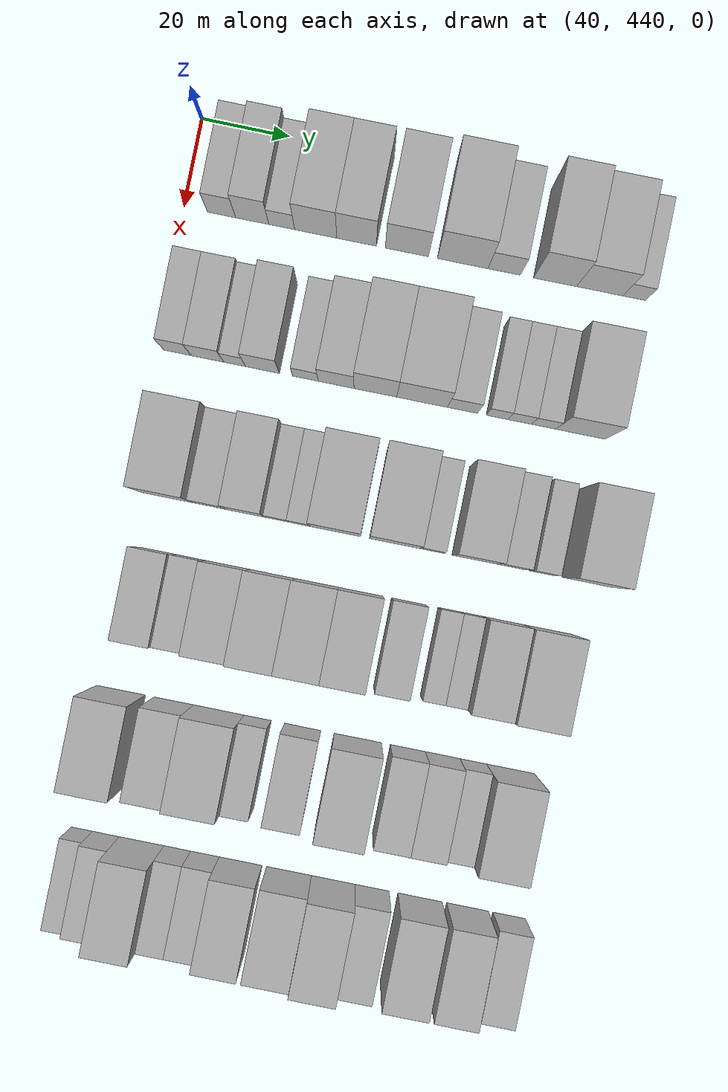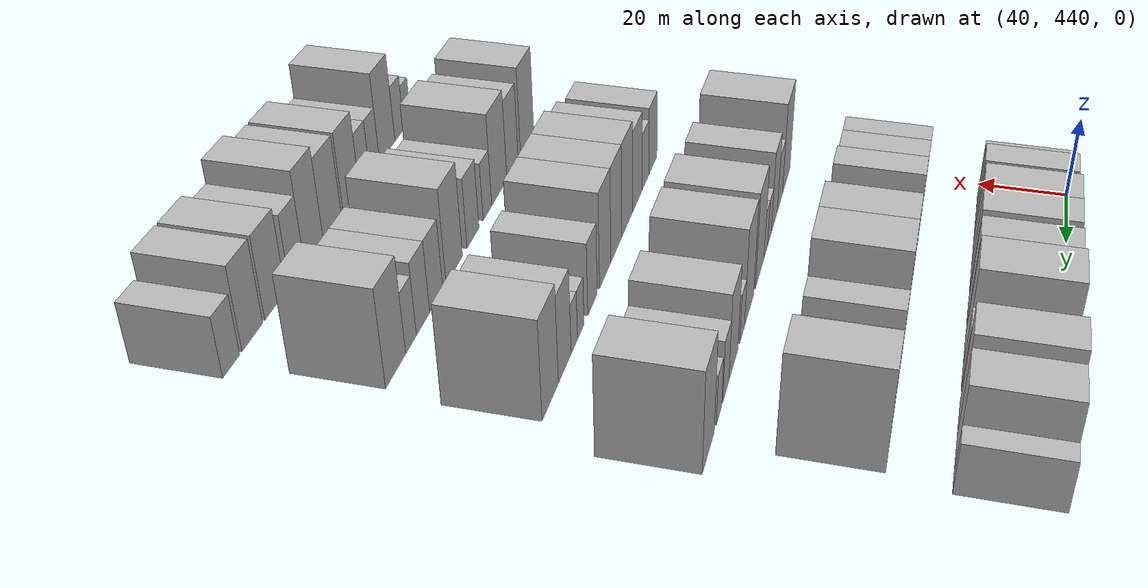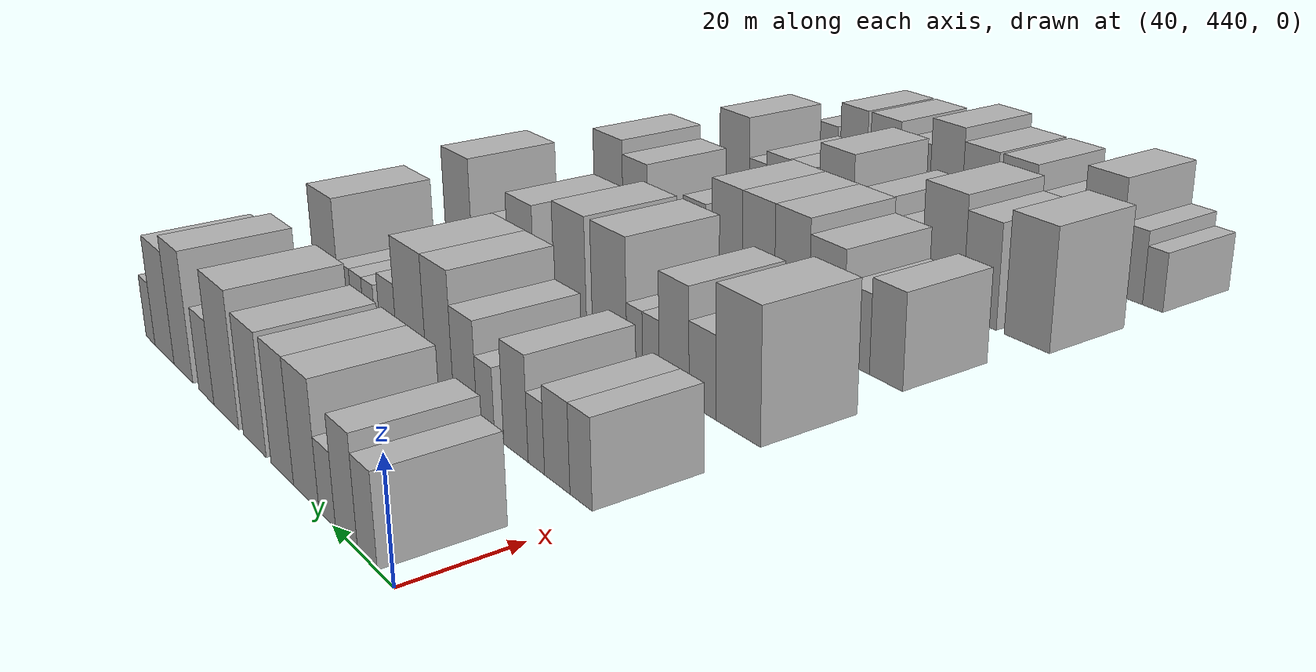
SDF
<sdf version="1.6">
 <world name="default">
  <model name="building_109">
   <static>1</static>
   <pose>50.0000 448.5178 0 0.000000 0.000000 0.000000</pose>
   <link name="link">
    <pose>0 0 7.50 0 0 0</pose>
    <collision name="collision"><geometry><box><size>20.0000 6.3722 15.0000</size></box></geometry></collision>
    <visual name="visual">
     <cast_shadows>0</cast_shadows>
     <geometry><box><size>20.0000 6.3722 15.0000</size></box></geometry>
     <material>
      <script>
       <uri>model://HANNAS_wall/materials/scripts</uri>
       <uri>model://HANNAS_wall/materials/textures</uri>
       <name>vrc/HANNAS_wall</name>
      </script>
     </material>
    </visual>
   </link>
  </model>
  <model name="building_110">
   <static>1</static>
   <pose>50.0000 455.4519 0 0.000000 0.000000 0.000000</pose>
   <link name="link">
    <pose>0 0 9.00 0 0 0</pose>
    <collision name="collision"><geometry><box><size>20.0000 7.4960 18.0000</size></box></geometry></collision>
    <visual name="visual">
     <cast_shadows>0</cast_shadows>
     <geometry><box><size>20.0000 7.4960 18.0000</size></box></geometry>
     <material>
      <script>
       <uri>model://HANNAS_wall/materials/scripts</uri>
       <uri>model://HANNAS_wall/materials/textures</uri>
       <name>vrc/HANNAS_wall</name>
      </script>
     </material>
    </visual>
   </link>
  </model>
  <model name="building_111">
   <static>1</static>
   <pose>50.0000 462.1285 0 0.000000 0.000000 0.000000</pose>
   <link name="link">
    <pose>0 0 6.00 0 0 0</pose>
    <collision name="collision"><geometry><box><size>20.0000 5.8573 12.0000</size></box></geometry></collision>
    <visual name="visual">
     <cast_shadows>0</cast_shadows>
     <geometry><box><size>20.0000 5.8573 12.0000</size></box></geometry>
     <material>
      <script>
       <uri>model://HANNAS_wall/materials/scripts</uri>
       <uri>model://HANNAS_wall/materials/textures</uri>
       <name>vrc/HANNAS_wall</name>
      </script>
     </material>
    </visual>
   </link>
  </model>
  <model name="building_112">
   <static>1</static>
   <pose>50.0000 469.8304 0 0.000000 0.000000 0.000000</pose>
   <link name="link">
    <pose>0 0 10.50 0 0 0</pose>
    <collision name="collision"><geometry><box><size>20.0000 9.5464 21.0000</size></box></geometry></collision>
    <visual name="visual">
     <cast_shadows>0</cast_shadows>
     <geometry><box><size>20.0000 9.5464 21.0000</size></box></geometry>
     <material>
      <script>
       <uri>model://HANNAS_wall/materials/scripts</uri>
       <uri>model://HANNAS_wall/materials/textures</uri>
       <name>vrc/HANNAS_wall</name>
      </script>
     </material>
    </visual>
   </link>
  </model>
  <model name="building_113">
   <static>1</static>
   <pose>50.0000 479.0954 0 0.000000 0.000000 0.000000</pose>
   <link name="link">
    <pose>0 0 10.50 0 0 0</pose>
    <collision name="collision"><geometry><box><size>20.0000 8.9836 21.0000</size></box></geometry></collision>
    <visual name="visual">
     <cast_shadows>0</cast_shadows>
     <geometry><box><size>20.0000 8.9836 21.0000</size></box></geometry>
     <material>
      <script>
       <uri>model://HANNAS_wall/materials/scripts</uri>
       <uri>model://HANNAS_wall/materials/textures</uri>
       <name>vrc/HANNAS_wall</name>
      </script>
     </material>
    </visual>
   </link>
  </model>
  <model name="building_114">
   <static>1</static>
   <pose>50.0000 490.4762 0 0.000000 0.000000 0.000000</pose>
   <link name="link">
    <pose>0 0 10.50 0 0 0</pose>
    <collision name="collision"><geometry><box><size>20.0000 9.7780 21.0000</size></box></geometry></collision>
    <visual name="visual">
     <cast_shadows>0</cast_shadows>
     <geometry><box><size>20.0000 9.7780 21.0000</size></box></geometry>
     <material>
      <script>
       <uri>model://HANNAS_wall/materials/scripts</uri>
       <uri>model://HANNAS_wall/materials/textures</uri>
       <name>vrc/HANNAS_wall</name>
      </script>
     </material>
    </visual>
   </link>
  </model>
  <model name="building_115">
   <static>1</static>
   <pose>50.0000 503.1000 0 0.000000 0.000000 0.000000</pose>
   <link name="link">
    <pose>0 0 12.00 0 0 0</pose>
    <collision name="collision"><geometry><box><size>20.0000 11.4695 24.0000</size></box></geometry></collision>
    <visual name="visual">
     <cast_shadows>0</cast_shadows>
     <geometry><box><size>20.0000 11.4695 24.0000</size></box></geometry>
     <material>
      <script>
       <uri>model://HANNAS_wall/materials/scripts</uri>
       <uri>model://HANNAS_wall/materials/textures</uri>
       <name>vrc/HANNAS_wall</name>
      </script>
     </material>
    </visual>
   </link>
  </model>
  <model name="building_116">
   <static>1</static>
   <pose>50.0000 512.5170 0 0.000000 0.000000 0.000000</pose>
   <link name="link">
    <pose>0 0 7.50 0 0 0</pose>
    <collision name="collision"><geometry><box><size>20.0000 7.3645 15.0000</size></box></geometry></collision>
    <visual name="visual">
     <cast_shadows>0</cast_shadows>
     <geometry><box><size>20.0000 7.3645 15.0000</size></box></geometry>
     <material>
      <script>
       <uri>model://HANNAS_wall/materials/scripts</uri>
       <uri>model://HANNAS_wall/materials/textures</uri>
       <name>vrc/HANNAS_wall</name>
      </script>
     </material>
    </visual>
   </link>
  </model>
  <model name="building_117">
   <static>1</static>
   <pose>50.0000 524.0915 0 0.000000 0.000000 0.000000</pose>
   <link name="link">
    <pose>0 0 12.00 0 0 0</pose>
    <collision name="collision"><geometry><box><size>20.0000 9.7845 24.0000</size></box></geometry></collision>
    <visual name="visual">
     <cast_shadows>0</cast_shadows>
     <geometry><box><size>20.0000 9.7845 24.0000</size></box></geometry>
     <material>
      <script>
       <uri>model://HANNAS_wall/materials/scripts</uri>
       <uri>model://HANNAS_wall/materials/textures</uri>
       <name>vrc/HANNAS_wall</name>
      </script>
     </material>
    </visual>
   </link>
  </model>
  <model name="building_118">
   <static>1</static>
   <pose>50.0000 534.2335 0 0.000000 0.000000 0.000000</pose>
   <link name="link">
    <pose>0 0 10.50 0 0 0</pose>
    <collision name="collision"><geometry><box><size>20.0000 10.4995 21.0000</size></box></geometry></collision>
    <visual name="visual">
     <cast_shadows>0</cast_shadows>
     <geometry><box><size>20.0000 10.4995 21.0000</size></box></geometry>
     <material>
      <script>
       <uri>model://HANNAS_wall/materials/scripts</uri>
       <uri>model://HANNAS_wall/materials/textures</uri>
       <name>vrc/HANNAS_wall</name>
      </script>
     </material>
    </visual>
   </link>
  </model>
  <model name="building_119">
   <static>1</static>
   <pose>50.0000 542.0225 0 0.000000 0.000000 0.000000</pose>
   <link name="link">
    <pose>0 0 6.00 0 0 0</pose>
    <collision name="collision"><geometry><box><size>20.0000 5.0784 12.0000</size></box></geometry></collision>
    <visual name="visual">
     <cast_shadows>0</cast_shadows>
     <geometry><box><size>20.0000 5.0784 12.0000</size></box></geometry>
     <material>
      <script>
       <uri>model://HANNAS_wall/materials/scripts</uri>
       <uri>model://HANNAS_wall/materials/textures</uri>
       <name>vrc/HANNAS_wall</name>
      </script>
     </material>
    </visual>
   </link>
  </model>
  <model name="building_224">
   <static>1</static>
   <pose>82.0000 444.9923 0 0.000000 0.000000 0.000000</pose>
   <link name="link">
    <pose>0 0 7.50 0 0 0</pose>
    <collision name="collision"><geometry><box><size>20.0000 6.1737 15.0000</size></box></geometry></collision>
    <visual name="visual">
     <cast_shadows>0</cast_shadows>
     <geometry><box><size>20.0000 6.1737 15.0000</size></box></geometry>
     <material>
      <script>
       <uri>model://HANNAS_wall/materials/scripts</uri>
       <uri>model://HANNAS_wall/materials/textures</uri>
       <name>vrc/HANNAS_wall</name>
      </script>
     </material>
    </visual>
   </link>
  </model>
  <model name="building_225">
   <static>1</static>
   <pose>82.0000 451.7728 0 0.000000 0.000000 0.000000</pose>
   <link name="link">
    <pose>0 0 7.50 0 0 0</pose>
    <collision name="collision"><geometry><box><size>20.0000 7.3873 15.0000</size></box></geometry></collision>
    <visual name="visual">
     <cast_shadows>0</cast_shadows>
     <geometry><box><size>20.0000 7.3873 15.0000</size></box></geometry>
     <material>
      <script>
       <uri>model://HANNAS_wall/materials/scripts</uri>
       <uri>model://HANNAS_wall/materials/textures</uri>
       <name>vrc/HANNAS_wall</name>
      </script>
     </material>
    </visual>
   </link>
  </model>
  <model name="building_226">
   <static>1</static>
   <pose>82.0000 457.9363 0 0.000000 0.000000 0.000000</pose>
   <link name="link">
    <pose>0 0 6.00 0 0 0</pose>
    <collision name="collision"><geometry><box><size>20.0000 4.9396 12.0000</size></box></geometry></collision>
    <visual name="visual">
     <cast_shadows>0</cast_shadows>
     <geometry><box><size>20.0000 4.9396 12.0000</size></box></geometry>
     <material>
      <script>
       <uri>model://HANNAS_wall/materials/scripts</uri>
       <uri>model://HANNAS_wall/materials/textures</uri>
       <name>vrc/HANNAS_wall</name>
      </script>
     </material>
    </visual>
   </link>
  </model>
  <model name="building_227">
   <static>1</static>
   <pose>82.0000 464.2583 0 0.000000 0.000000 0.000000</pose>
   <link name="link">
    <pose>0 0 9.00 0 0 0</pose>
    <collision name="collision"><geometry><box><size>20.0000 7.7044 18.0000</size></box></geometry></collision>
    <visual name="visual">
     <cast_shadows>0</cast_shadows>
     <geometry><box><size>20.0000 7.7044 18.0000</size></box></geometry>
     <material>
      <script>
       <uri>model://HANNAS_wall/materials/scripts</uri>
       <uri>model://HANNAS_wall/materials/textures</uri>
       <name>vrc/HANNAS_wall</name>
      </script>
     </material>
    </visual>
   </link>
  </model>
  <model name="building_228">
   <static>1</static>
   <pose>82.0000 473.9911 0 0.000000 0.000000 0.000000</pose>
   <link name="link">
    <pose>0 0 6.00 0 0 0</pose>
    <collision name="collision"><geometry><box><size>20.0000 5.7613 12.0000</size></box></geometry></collision>
    <visual name="visual">
     <cast_shadows>0</cast_shadows>
     <geometry><box><size>20.0000 5.7613 12.0000</size></box></geometry>
     <material>
      <script>
       <uri>model://HANNAS_wall/materials/scripts</uri>
       <uri>model://HANNAS_wall/materials/textures</uri>
       <name>vrc/HANNAS_wall</name>
      </script>
     </material>
    </visual>
   </link>
  </model>
  <model name="building_229">
   <static>1</static>
   <pose>82.0000 480.9114 0 0.000000 0.000000 0.000000</pose>
   <link name="link">
    <pose>0 0 9.00 0 0 0</pose>
    <collision name="collision"><geometry><box><size>20.0000 8.0794 18.0000</size></box></geometry></collision>
    <visual name="visual">
     <cast_shadows>0</cast_shadows>
     <geometry><box><size>20.0000 8.0794 18.0000</size></box></geometry>
     <material>
      <script>
       <uri>model://HANNAS_wall/materials/scripts</uri>
       <uri>model://HANNAS_wall/materials/textures</uri>
       <name>vrc/HANNAS_wall</name>
      </script>
     </material>
    </visual>
   </link>
  </model>
  <model name="building_230">
   <static>1</static>
   <pose>82.0000 489.7833 0 0.000000 0.000000 0.000000</pose>
   <link name="link">
    <pose>0 0 12.00 0 0 0</pose>
    <collision name="collision"><geometry><box><size>20.0000 9.6645 24.0000</size></box></geometry></collision>
    <visual name="visual">
     <cast_shadows>0</cast_shadows>
     <geometry><box><size>20.0000 9.6645 24.0000</size></box></geometry>
     <material>
      <script>
       <uri>model://HANNAS_wall/materials/scripts</uri>
       <uri>model://HANNAS_wall/materials/textures</uri>
       <name>vrc/HANNAS_wall</name>
      </script>
     </material>
    </visual>
   </link>
  </model>
  <model name="building_231">
   <static>1</static>
   <pose>82.0000 500.3539 0 0.000000 0.000000 0.000000</pose>
   <link name="link">
    <pose>0 0 12.00 0 0 0</pose>
    <collision name="collision"><geometry><box><size>20.0000 11.4767 24.0000</size></box></geometry></collision>
    <visual name="visual">
     <cast_shadows>0</cast_shadows>
     <geometry><box><size>20.0000 11.4767 24.0000</size></box></geometry>
     <material>
      <script>
       <uri>model://HANNAS_wall/materials/scripts</uri>
       <uri>model://HANNAS_wall/materials/textures</uri>
       <name>vrc/HANNAS_wall</name>
      </script>
     </material>
    </visual>
   </link>
  </model>
  <model name="building_232">
   <static>1</static>
   <pose>82.0000 509.5143 0 0.000000 0.000000 0.000000</pose>
   <link name="link">
    <pose>0 0 7.50 0 0 0</pose>
    <collision name="collision"><geometry><box><size>20.0000 6.8441 15.0000</size></box></geometry></collision>
    <visual name="visual">
     <cast_shadows>0</cast_shadows>
     <geometry><box><size>20.0000 6.8441 15.0000</size></box></geometry>
     <material>
      <script>
       <uri>model://HANNAS_wall/materials/scripts</uri>
       <uri>model://HANNAS_wall/materials/textures</uri>
       <name>vrc/HANNAS_wall</name>
      </script>
     </material>
    </visual>
   </link>
  </model>
  <model name="building_233">
   <static>1</static>
   <pose>82.0000 517.3817 0 0.000000 0.000000 0.000000</pose>
   <link name="link">
    <pose>0 0 6.00 0 0 0</pose>
    <collision name="collision"><geometry><box><size>20.0000 4.8907 12.0000</size></box></geometry></collision>
    <visual name="visual">
     <cast_shadows>0</cast_shadows>
     <geometry><box><size>20.0000 4.8907 12.0000</size></box></geometry>
     <material>
      <script>
       <uri>model://HANNAS_wall/materials/scripts</uri>
       <uri>model://HANNAS_wall/materials/textures</uri>
       <name>vrc/HANNAS_wall</name>
      </script>
     </material>
    </visual>
   </link>
  </model>
  <model name="building_234">
   <static>1</static>
   <pose>82.0000 522.4943 0 0.000000 0.000000 0.000000</pose>
   <link name="link">
    <pose>0 0 6.00 0 0 0</pose>
    <collision name="collision"><geometry><box><size>20.0000 5.3345 12.0000</size></box></geometry></collision>
    <visual name="visual">
     <cast_shadows>0</cast_shadows>
     <geometry><box><size>20.0000 5.3345 12.0000</size></box></geometry>
     <material>
      <script>
       <uri>model://HANNAS_wall/materials/scripts</uri>
       <uri>model://HANNAS_wall/materials/textures</uri>
       <name>vrc/HANNAS_wall</name>
      </script>
     </material>
    </visual>
   </link>
  </model>
  <model name="building_235">
   <static>1</static>
   <pose>82.0000 527.9112 0 0.000000 0.000000 0.000000</pose>
   <link name="link">
    <pose>0 0 6.00 0 0 0</pose>
    <collision name="collision"><geometry><box><size>20.0000 5.4992 12.0000</size></box></geometry></collision>
    <visual name="visual">
     <cast_shadows>0</cast_shadows>
     <geometry><box><size>20.0000 5.4992 12.0000</size></box></geometry>
     <material>
      <script>
       <uri>model://HANNAS_wall/materials/scripts</uri>
       <uri>model://HANNAS_wall/materials/textures</uri>
       <name>vrc/HANNAS_wall</name>
      </script>
     </material>
    </visual>
   </link>
  </model>
  <model name="building_236">
   <static>1</static>
   <pose>82.0000 536.2991 0 0.000000 0.000000 0.000000</pose>
   <link name="link">
    <pose>0 0 12.00 0 0 0</pose>
    <collision name="collision"><geometry><box><size>20.0000 11.2767 24.0000</size></box></geometry></collision>
    <visual name="visual">
     <cast_shadows>0</cast_shadows>
     <geometry><box><size>20.0000 11.2767 24.0000</size></box></geometry>
     <material>
      <script>
       <uri>model://HANNAS_wall/materials/scripts</uri>
       <uri>model://HANNAS_wall/materials/textures</uri>
       <name>vrc/HANNAS_wall</name>
      </script>
     </material>
    </visual>
   </link>
  </model>
  <model name="building_333">
   <static>1</static>
   <pose>114.0000 449.4453 0 0.000000 0.000000 0.000000</pose>
   <link name="link">
    <pose>0 0 12.00 0 0 0</pose>
    <collision name="collision"><geometry><box><size>20.0000 11.8613 24.0000</size></box></geometry></collision>
    <visual name="visual">
     <cast_shadows>0</cast_shadows>
     <geometry><box><size>20.0000 11.8613 24.0000</size></box></geometry>
     <material>
      <script>
       <uri>model://HANNAS_wall/materials/scripts</uri>
       <uri>model://HANNAS_wall/materials/textures</uri>
       <name>vrc/HANNAS_wall</name>
      </script>
     </material>
    </visual>
   </link>
  </model>
  <model name="building_334">
   <static>1</static>
   <pose>114.0000 459.1137 0 0.000000 0.000000 0.000000</pose>
   <link name="link">
    <pose>0 0 7.50 0 0 0</pose>
    <collision name="collision"><geometry><box><size>20.0000 7.4756 15.0000</size></box></geometry></collision>
    <visual name="visual">
     <cast_shadows>0</cast_shadows>
     <geometry><box><size>20.0000 7.4756 15.0000</size></box></geometry>
     <material>
      <script>
       <uri>model://HANNAS_wall/materials/scripts</uri>
       <uri>model://HANNAS_wall/materials/textures</uri>
       <name>vrc/HANNAS_wall</name>
      </script>
     </material>
    </visual>
   </link>
  </model>
  <model name="building_335">
   <static>1</static>
   <pose>114.0000 467.2316 0 0.000000 0.000000 0.000000</pose>
   <link name="link">
    <pose>0 0 10.50 0 0 0</pose>
    <collision name="collision"><geometry><box><size>20.0000 8.7603 21.0000</size></box></geometry></collision>
    <visual name="visual">
     <cast_shadows>0</cast_shadows>
     <geometry><box><size>20.0000 8.7603 21.0000</size></box></geometry>
     <material>
      <script>
       <uri>model://HANNAS_wall/materials/scripts</uri>
       <uri>model://HANNAS_wall/materials/textures</uri>
       <name>vrc/HANNAS_wall</name>
      </script>
     </material>
    </visual>
   </link>
  </model>
  <model name="building_336">
   <static>1</static>
   <pose>114.0000 474.1477 0 0.000000 0.000000 0.000000</pose>
   <link name="link">
    <pose>0 0 6.00 0 0 0</pose>
    <collision name="collision"><geometry><box><size>20.0000 5.0718 12.0000</size></box></geometry></collision>
    <visual name="visual">
     <cast_shadows>0</cast_shadows>
     <geometry><box><size>20.0000 5.0718 12.0000</size></box></geometry>
     <material>
      <script>
       <uri>model://HANNAS_wall/materials/scripts</uri>
       <uri>model://HANNAS_wall/materials/textures</uri>
       <name>vrc/HANNAS_wall</name>
      </script>
     </material>
    </visual>
   </link>
  </model>
  <model name="building_337">
   <static>1</static>
   <pose>114.0000 479.1568 0 0.000000 0.000000 0.000000</pose>
   <link name="link">
    <pose>0 0 6.00 0 0 0</pose>
    <collision name="collision"><geometry><box><size>20.0000 4.9465 12.0000</size></box></geometry></collision>
    <visual name="visual">
     <cast_shadows>0</cast_shadows>
     <geometry><box><size>20.0000 4.9465 12.0000</size></box></geometry>
     <material>
      <script>
       <uri>model://HANNAS_wall/materials/scripts</uri>
       <uri>model://HANNAS_wall/materials/textures</uri>
       <name>vrc/HANNAS_wall</name>
      </script>
     </material>
    </visual>
   </link>
  </model>
  <model name="building_338">
   <static>1</static>
   <pose>114.0000 487.2721 0 0.000000 0.000000 0.000000</pose>
   <link name="link">
    <pose>0 0 12.00 0 0 0</pose>
    <collision name="collision"><geometry><box><size>20.0000 11.2841 24.0000</size></box></geometry></collision>
    <visual name="visual">
     <cast_shadows>0</cast_shadows>
     <geometry><box><size>20.0000 11.2841 24.0000</size></box></geometry>
     <material>
      <script>
       <uri>model://HANNAS_wall/materials/scripts</uri>
       <uri>model://HANNAS_wall/materials/textures</uri>
       <name>vrc/HANNAS_wall</name>
      </script>
     </material>
    </visual>
   </link>
  </model>
  <model name="building_339">
   <static>1</static>
   <pose>114.0000 500.5069 0 0.000000 0.000000 0.000000</pose>
   <link name="link">
    <pose>0 0 12.00 0 0 0</pose>
    <collision name="collision"><geometry><box><size>20.0000 11.1854 24.0000</size></box></geometry></collision>
    <visual name="visual">
     <cast_shadows>0</cast_shadows>
     <geometry><box><size>20.0000 11.1854 24.0000</size></box></geometry>
     <material>
      <script>
       <uri>model://HANNAS_wall/materials/scripts</uri>
       <uri>model://HANNAS_wall/materials/textures</uri>
       <name>vrc/HANNAS_wall</name>
      </script>
     </material>
    </visual>
   </link>
  </model>
  <model name="building_340">
   <static>1</static>
   <pose>114.0000 508.8546 0 0.000000 0.000000 0.000000</pose>
   <link name="link">
    <pose>0 0 6.00 0 0 0</pose>
    <collision name="collision"><geometry><box><size>20.0000 5.5102 12.0000</size></box></geometry></collision>
    <visual name="visual">
     <cast_shadows>0</cast_shadows>
     <geometry><box><size>20.0000 5.5102 12.0000</size></box></geometry>
     <material>
      <script>
       <uri>model://HANNAS_wall/materials/scripts</uri>
       <uri>model://HANNAS_wall/materials/textures</uri>
       <name>vrc/HANNAS_wall</name>
      </script>
     </material>
    </visual>
   </link>
  </model>
  <model name="building_341">
   <static>1</static>
   <pose>114.0000 518.6071 0 0.000000 0.000000 0.000000</pose>
   <link name="link">
    <pose>0 0 10.50 0 0 0</pose>
    <collision name="collision"><geometry><box><size>20.0000 9.9948 21.0000</size></box></geometry></collision>
    <visual name="visual">
     <cast_shadows>0</cast_shadows>
     <geometry><box><size>20.0000 9.9948 21.0000</size></box></geometry>
     <material>
      <script>
       <uri>model://HANNAS_wall/materials/scripts</uri>
       <uri>model://HANNAS_wall/materials/textures</uri>
       <name>vrc/HANNAS_wall</name>
      </script>
     </material>
    </visual>
   </link>
  </model>
  <model name="building_342">
   <static>1</static>
   <pose>114.0000 526.8687 0 0.000000 0.000000 0.000000</pose>
   <link name="link">
    <pose>0 0 7.50 0 0 0</pose>
    <collision name="collision"><geometry><box><size>20.0000 6.5284 15.0000</size></box></geometry></collision>
    <visual name="visual">
     <cast_shadows>0</cast_shadows>
     <geometry><box><size>20.0000 6.5284 15.0000</size></box></geometry>
     <material>
      <script>
       <uri>model://HANNAS_wall/materials/scripts</uri>
       <uri>model://HANNAS_wall/materials/textures</uri>
       <name>vrc/HANNAS_wall</name>
      </script>
     </material>
    </visual>
   </link>
  </model>
  <model name="building_343">
   <static>1</static>
   <pose>114.0000 533.8383 0 0.000000 0.000000 0.000000</pose>
   <link name="link">
    <pose>0 0 6.00 0 0 0</pose>
    <collision name="collision"><geometry><box><size>20.0000 5.4108 12.0000</size></box></geometry></collision>
    <visual name="visual">
     <cast_shadows>0</cast_shadows>
     <geometry><box><size>20.0000 5.4108 12.0000</size></box></geometry>
     <material>
      <script>
       <uri>model://HANNAS_wall/materials/scripts</uri>
       <uri>model://HANNAS_wall/materials/textures</uri>
       <name>vrc/HANNAS_wall</name>
      </script>
     </material>
    </visual>
   </link>
  </model>
  <model name="building_344">
   <static>1</static>
   <pose>114.0000 544.2766 0 0.000000 0.000000 0.000000</pose>
   <link name="link">
    <pose>0 0 12.00 0 0 0</pose>
    <collision name="collision"><geometry><box><size>20.0000 11.4657 24.0000</size></box></geometry></collision>
    <visual name="visual">
     <cast_shadows>0</cast_shadows>
     <geometry><box><size>20.0000 11.4657 24.0000</size></box></geometry>
     <material>
      <script>
       <uri>model://HANNAS_wall/materials/scripts</uri>
       <uri>model://HANNAS_wall/materials/textures</uri>
       <name>vrc/HANNAS_wall</name>
      </script>
     </material>
    </visual>
   </link>
  </model>
  <model name="building_443">
   <static>1</static>
   <pose>146.0000 449.8623 0 0.000000 0.000000 0.000000</pose>
   <link name="link">
    <pose>0 0 9.00 0 0 0</pose>
    <collision name="collision"><geometry><box><size>20.0000 8.4763 18.0000</size></box></geometry></collision>
    <visual name="visual">
     <cast_shadows>0</cast_shadows>
     <geometry><box><size>20.0000 8.4763 18.0000</size></box></geometry>
     <material>
      <script>
       <uri>model://HANNAS_wall/materials/scripts</uri>
       <uri>model://HANNAS_wall/materials/textures</uri>
       <name>vrc/HANNAS_wall</name>
      </script>
     </material>
    </visual>
   </link>
  </model>
  <model name="building_444">
   <static>1</static>
   <pose>146.0000 457.5555 0 0.000000 0.000000 0.000000</pose>
   <link name="link">
    <pose>0 0 7.50 0 0 0</pose>
    <collision name="collision"><geometry><box><size>20.0000 6.9101 15.0000</size></box></geometry></collision>
    <visual name="visual">
     <cast_shadows>0</cast_shadows>
     <geometry><box><size>20.0000 6.9101 15.0000</size></box></geometry>
     <material>
      <script>
       <uri>model://HANNAS_wall/materials/scripts</uri>
       <uri>model://HANNAS_wall/materials/textures</uri>
       <name>vrc/HANNAS_wall</name>
      </script>
     </material>
    </visual>
   </link>
  </model>
  <model name="building_445">
   <static>1</static>
   <pose>146.0000 465.8631 0 0.000000 0.000000 0.000000</pose>
   <link name="link">
    <pose>0 0 10.50 0 0 0</pose>
    <collision name="collision"><geometry><box><size>20.0000 9.7052 21.0000</size></box></geometry></collision>
    <visual name="visual">
     <cast_shadows>0</cast_shadows>
     <geometry><box><size>20.0000 9.7052 21.0000</size></box></geometry>
     <material>
      <script>
       <uri>model://HANNAS_wall/materials/scripts</uri>
       <uri>model://HANNAS_wall/materials/textures</uri>
       <name>vrc/HANNAS_wall</name>
      </script>
     </material>
    </visual>
   </link>
  </model>
  <model name="building_446">
   <static>1</static>
   <pose>146.0000 475.7474 0 0.000000 0.000000 0.000000</pose>
   <link name="link">
    <pose>0 0 12.00 0 0 0</pose>
    <collision name="collision"><geometry><box><size>20.0000 10.0633 24.0000</size></box></geometry></collision>
    <visual name="visual">
     <cast_shadows>0</cast_shadows>
     <geometry><box><size>20.0000 10.0633 24.0000</size></box></geometry>
     <material>
      <script>
       <uri>model://HANNAS_wall/materials/scripts</uri>
       <uri>model://HANNAS_wall/materials/textures</uri>
       <name>vrc/HANNAS_wall</name>
      </script>
     </material>
    </visual>
   </link>
  </model>
  <model name="building_447">
   <static>1</static>
   <pose>146.0000 485.6946 0 0.000000 0.000000 0.000000</pose>
   <link name="link">
    <pose>0 0 12.00 0 0 0</pose>
    <collision name="collision"><geometry><box><size>20.0000 9.8312 24.0000</size></box></geometry></collision>
    <visual name="visual">
     <cast_shadows>0</cast_shadows>
     <geometry><box><size>20.0000 9.8312 24.0000</size></box></geometry>
     <material>
      <script>
       <uri>model://HANNAS_wall/materials/scripts</uri>
       <uri>model://HANNAS_wall/materials/textures</uri>
       <name>vrc/HANNAS_wall</name>
      </script>
     </material>
    </visual>
   </link>
  </model>
  <model name="building_448">
   <static>1</static>
   <pose>146.0000 495.4647 0 0.000000 0.000000 0.000000</pose>
   <link name="link">
    <pose>0 0 12.00 0 0 0</pose>
    <collision name="collision"><geometry><box><size>20.0000 9.7090 24.0000</size></box></geometry></collision>
    <visual name="visual">
     <cast_shadows>0</cast_shadows>
     <geometry><box><size>20.0000 9.7090 24.0000</size></box></geometry>
     <material>
      <script>
       <uri>model://HANNAS_wall/materials/scripts</uri>
       <uri>model://HANNAS_wall/materials/textures</uri>
       <name>vrc/HANNAS_wall</name>
      </script>
     </material>
    </visual>
   </link>
  </model>
  <model name="building_449">
   <static>1</static>
   <pose>146.0000 506.1019 0 0.000000 0.000000 0.000000</pose>
   <link name="link">
    <pose>0 0 9.00 0 0 0</pose>
    <collision name="collision"><geometry><box><size>20.0000 7.5655 18.0000</size></box></geometry></collision>
    <visual name="visual">
     <cast_shadows>0</cast_shadows>
     <geometry><box><size>20.0000 7.5655 18.0000</size></box></geometry>
     <material>
      <script>
       <uri>model://HANNAS_wall/materials/scripts</uri>
       <uri>model://HANNAS_wall/materials/textures</uri>
       <name>vrc/HANNAS_wall</name>
      </script>
     </material>
    </visual>
   </link>
  </model>
  <model name="building_450">
   <static>1</static>
   <pose>146.0000 515.3960 0 0.000000 0.000000 0.000000</pose>
   <link name="link">
    <pose>0 0 6.00 0 0 0</pose>
    <collision name="collision"><geometry><box><size>20.0000 5.0226 12.0000</size></box></geometry></collision>
    <visual name="visual">
     <cast_shadows>0</cast_shadows>
     <geometry><box><size>20.0000 5.0226 12.0000</size></box></geometry>
     <material>
      <script>
       <uri>model://HANNAS_wall/materials/scripts</uri>
       <uri>model://HANNAS_wall/materials/textures</uri>
       <name>vrc/HANNAS_wall</name>
      </script>
     </material>
    </visual>
   </link>
  </model>
  <model name="building_451">
   <static>1</static>
   <pose>146.0000 520.3159 0 0.000000 0.000000 0.000000</pose>
   <link name="link">
    <pose>0 0 6.00 0 0 0</pose>
    <collision name="collision"><geometry><box><size>20.0000 4.8171 12.0000</size></box></geometry></collision>
    <visual name="visual">
     <cast_shadows>0</cast_shadows>
     <geometry><box><size>20.0000 4.8171 12.0000</size></box></geometry>
     <material>
      <script>
       <uri>model://HANNAS_wall/materials/scripts</uri>
       <uri>model://HANNAS_wall/materials/textures</uri>
       <name>vrc/HANNAS_wall</name>
      </script>
     </material>
    </visual>
   </link>
  </model>
  <model name="building_452">
   <static>1</static>
   <pose>146.0000 527.3183 0 0.000000 0.000000 0.000000</pose>
   <link name="link">
    <pose>0 0 10.50 0 0 0</pose>
    <collision name="collision"><geometry><box><size>20.0000 9.1877 21.0000</size></box></geometry></collision>
    <visual name="visual">
     <cast_shadows>0</cast_shadows>
     <geometry><box><size>20.0000 9.1877 21.0000</size></box></geometry>
     <material>
      <script>
       <uri>model://HANNAS_wall/materials/scripts</uri>
       <uri>model://HANNAS_wall/materials/textures</uri>
       <name>vrc/HANNAS_wall</name>
      </script>
     </material>
    </visual>
   </link>
  </model>
  <model name="building_453">
   <static>1</static>
   <pose>146.0000 537.4878 0 0.000000 0.000000 0.000000</pose>
   <link name="link">
    <pose>0 0 12.00 0 0 0</pose>
    <collision name="collision"><geometry><box><size>20.0000 11.1512 24.0000</size></box></geometry></collision>
    <visual name="visual">
     <cast_shadows>0</cast_shadows>
     <geometry><box><size>20.0000 11.1512 24.0000</size></box></geometry>
     <material>
      <script>
       <uri>model://HANNAS_wall/materials/scripts</uri>
       <uri>model://HANNAS_wall/materials/textures</uri>
       <name>vrc/HANNAS_wall</name>
      </script>
     </material>
    </visual>
   </link>
  </model>
  <model name="building_564">
   <static>1</static>
   <pose>178.0000 447.5423 0 0.000000 0.000000 0.000000</pose>
   <link name="link">
    <pose>0 0 12.00 0 0 0</pose>
    <collision name="collision"><geometry><box><size>20.0000 11.0684 24.0000</size></box></geometry></collision>
    <visual name="visual">
     <cast_shadows>0</cast_shadows>
     <geometry><box><size>20.0000 11.0684 24.0000</size></box></geometry>
     <material>
      <script>
       <uri>model://HANNAS_wall/materials/scripts</uri>
       <uri>model://HANNAS_wall/materials/textures</uri>
       <name>vrc/HANNAS_wall</name>
      </script>
     </material>
    </visual>
   </link>
  </model>
  <model name="building_565">
   <static>1</static>
   <pose>178.0000 459.5193 0 0.000000 0.000000 0.000000</pose>
   <link name="link">
    <pose>0 0 10.50 0 0 0</pose>
    <collision name="collision"><geometry><box><size>20.0000 8.8857 21.0000</size></box></geometry></collision>
    <visual name="visual">
     <cast_shadows>0</cast_shadows>
     <geometry><box><size>20.0000 8.8857 21.0000</size></box></geometry>
     <material>
      <script>
       <uri>model://HANNAS_wall/materials/scripts</uri>
       <uri>model://HANNAS_wall/materials/textures</uri>
       <name>vrc/HANNAS_wall</name>
      </script>
     </material>
    </visual>
   </link>
  </model>
  <model name="building_566">
   <static>1</static>
   <pose>178.0000 469.6822 0 0.000000 0.000000 0.000000</pose>
   <link name="link">
    <pose>0 0 12.00 0 0 0</pose>
    <collision name="collision"><geometry><box><size>20.0000 11.4401 24.0000</size></box></geometry></collision>
    <visual name="visual">
     <cast_shadows>0</cast_shadows>
     <geometry><box><size>20.0000 11.4401 24.0000</size></box></geometry>
     <material>
      <script>
       <uri>model://HANNAS_wall/materials/scripts</uri>
       <uri>model://HANNAS_wall/materials/textures</uri>
       <name>vrc/HANNAS_wall</name>
      </script>
     </material>
    </visual>
   </link>
  </model>
  <model name="building_567">
   <static>1</static>
   <pose>178.0000 478.4973 0 0.000000 0.000000 0.000000</pose>
   <link name="link">
    <pose>0 0 7.50 0 0 0</pose>
    <collision name="collision"><geometry><box><size>20.0000 6.1902 15.0000</size></box></geometry></collision>
    <visual name="visual">
     <cast_shadows>0</cast_shadows>
     <geometry><box><size>20.0000 6.1902 15.0000</size></box></geometry>
     <material>
      <script>
       <uri>model://HANNAS_wall/materials/scripts</uri>
       <uri>model://HANNAS_wall/materials/textures</uri>
       <name>vrc/HANNAS_wall</name>
      </script>
     </material>
    </visual>
   </link>
  </model>
  <model name="building_568">
   <static>1</static>
   <pose>178.0000 488.6981 0 0.000000 0.000000 0.000000</pose>
   <link name="link">
    <pose>0 0 9.00 0 0 0</pose>
    <collision name="collision"><geometry><box><size>20.0000 8.2113 18.0000</size></box></geometry></collision>
    <visual name="visual">
     <cast_shadows>0</cast_shadows>
     <geometry><box><size>20.0000 8.2113 18.0000</size></box></geometry>
     <material>
      <script>
       <uri>model://HANNAS_wall/materials/scripts</uri>
       <uri>model://HANNAS_wall/materials/textures</uri>
       <name>vrc/HANNAS_wall</name>
      </script>
     </material>
    </visual>
   </link>
  </model>
  <model name="building_569">
   <static>1</static>
   <pose>178.0000 501.1652 0 0.000000 0.000000 0.000000</pose>
   <link name="link">
    <pose>0 0 12.00 0 0 0</pose>
    <collision name="collision"><geometry><box><size>20.0000 10.7230 24.0000</size></box></geometry></collision>
    <visual name="visual">
     <cast_shadows>0</cast_shadows>
     <geometry><box><size>20.0000 10.7230 24.0000</size></box></geometry>
     <material>
      <script>
       <uri>model://HANNAS_wall/materials/scripts</uri>
       <uri>model://HANNAS_wall/materials/textures</uri>
       <name>vrc/HANNAS_wall</name>
      </script>
     </material>
    </visual>
   </link>
  </model>
  <model name="building_570">
   <static>1</static>
   <pose>178.0000 512.5145 0 0.000000 0.000000 0.000000</pose>
   <link name="link">
    <pose>0 0 9.00 0 0 0</pose>
    <collision name="collision"><geometry><box><size>20.0000 7.9756 18.0000</size></box></geometry></collision>
    <visual name="visual">
     <cast_shadows>0</cast_shadows>
     <geometry><box><size>20.0000 7.9756 18.0000</size></box></geometry>
     <material>
      <script>
       <uri>model://HANNAS_wall/materials/scripts</uri>
       <uri>model://HANNAS_wall/materials/textures</uri>
       <name>vrc/HANNAS_wall</name>
      </script>
     </material>
    </visual>
   </link>
  </model>
  <model name="building_571">
   <static>1</static>
   <pose>178.0000 520.3920 0 0.000000 0.000000 0.000000</pose>
   <link name="link">
    <pose>0 0 9.00 0 0 0</pose>
    <collision name="collision"><geometry><box><size>20.0000 7.7794 18.0000</size></box></geometry></collision>
    <visual name="visual">
     <cast_shadows>0</cast_shadows>
     <geometry><box><size>20.0000 7.7794 18.0000</size></box></geometry>
     <material>
      <script>
       <uri>model://HANNAS_wall/materials/scripts</uri>
       <uri>model://HANNAS_wall/materials/textures</uri>
       <name>vrc/HANNAS_wall</name>
      </script>
     </material>
    </visual>
   </link>
  </model>
  <model name="building_572">
   <static>1</static>
   <pose>178.0000 527.3102 0 0.000000 0.000000 0.000000</pose>
   <link name="link">
    <pose>0 0 7.50 0 0 0</pose>
    <collision name="collision"><geometry><box><size>20.0000 6.0571 15.0000</size></box></geometry></collision>
    <visual name="visual">
     <cast_shadows>0</cast_shadows>
     <geometry><box><size>20.0000 6.0571 15.0000</size></box></geometry>
     <material>
      <script>
       <uri>model://HANNAS_wall/materials/scripts</uri>
       <uri>model://HANNAS_wall/materials/textures</uri>
       <name>vrc/HANNAS_wall</name>
      </script>
     </material>
    </visual>
   </link>
  </model>
  <model name="building_573">
   <static>1</static>
   <pose>178.0000 535.7511 0 0.000000 0.000000 0.000000</pose>
   <link name="link">
    <pose>0 0 12.00 0 0 0</pose>
    <collision name="collision"><geometry><box><size>20.0000 10.8247 24.0000</size></box></geometry></collision>
    <visual name="visual">
     <cast_shadows>0</cast_shadows>
     <geometry><box><size>20.0000 10.8247 24.0000</size></box></geometry>
     <material>
      <script>
       <uri>model://HANNAS_wall/materials/scripts</uri>
       <uri>model://HANNAS_wall/materials/textures</uri>
       <name>vrc/HANNAS_wall</name>
      </script>
     </material>
    </visual>
   </link>
  </model>
  <model name="building_678">
   <static>1</static>
   <pose>210.0000 445.1359 0 0.000000 0.000000 0.000000</pose>
   <link name="link">
    <pose>0 0 6.00 0 0 0</pose>
    <collision name="collision"><geometry><box><size>20.0000 4.8478 12.0000</size></box></geometry></collision>
    <visual name="visual">
     <cast_shadows>0</cast_shadows>
     <geometry><box><size>20.0000 4.8478 12.0000</size></box></geometry>
     <material>
      <script>
       <uri>model://HANNAS_wall/materials/scripts</uri>
       <uri>model://HANNAS_wall/materials/textures</uri>
       <name>vrc/HANNAS_wall</name>
      </script>
     </material>
    </visual>
   </link>
  </model>
  <model name="building_679">
   <static>1</static>
   <pose>210.0000 450.5780 0 0.000000 0.000000 0.000000</pose>
   <link name="link">
    <pose>0 0 7.50 0 0 0</pose>
    <collision name="collision"><geometry><box><size>20.0000 6.0365 15.0000</size></box></geometry></collision>
    <visual name="visual">
     <cast_shadows>0</cast_shadows>
     <geometry><box><size>20.0000 6.0365 15.0000</size></box></geometry>
     <material>
      <script>
       <uri>model://HANNAS_wall/materials/scripts</uri>
       <uri>model://HANNAS_wall/materials/textures</uri>
       <name>vrc/HANNAS_wall</name>
      </script>
     </material>
    </visual>
   </link>
  </model>
  <model name="building_680">
   <static>1</static>
   <pose>210.0000 458.6454 0 0.000000 0.000000 0.000000</pose>
   <link name="link">
    <pose>0 0 12.00 0 0 0</pose>
    <collision name="collision"><geometry><box><size>20.0000 10.0983 24.0000</size></box></geometry></collision>
    <visual name="visual">
     <cast_shadows>0</cast_shadows>
     <geometry><box><size>20.0000 10.0983 24.0000</size></box></geometry>
     <material>
      <script>
       <uri>model://HANNAS_wall/materials/scripts</uri>
       <uri>model://HANNAS_wall/materials/textures</uri>
       <name>vrc/HANNAS_wall</name>
      </script>
     </material>
    </visual>
   </link>
  </model>
  <model name="building_681">
   <static>1</static>
   <pose>210.0000 466.7273 0 0.000000 0.000000 0.000000</pose>
   <link name="link">
    <pose>0 0 7.50 0 0 0</pose>
    <collision name="collision"><geometry><box><size>20.0000 6.0654 15.0000</size></box></geometry></collision>
    <visual name="visual">
     <cast_shadows>0</cast_shadows>
     <geometry><box><size>20.0000 6.0654 15.0000</size></box></geometry>
     <material>
      <script>
       <uri>model://HANNAS_wall/materials/scripts</uri>
       <uri>model://HANNAS_wall/materials/textures</uri>
       <name>vrc/HANNAS_wall</name>
      </script>
     </material>
    </visual>
   </link>
  </model>
  <model name="building_682">
   <static>1</static>
   <pose>210.0000 472.9959 0 0.000000 0.000000 0.000000</pose>
   <link name="link">
    <pose>0 0 7.50 0 0 0</pose>
    <collision name="collision"><geometry><box><size>20.0000 6.4717 15.0000</size></box></geometry></collision>
    <visual name="visual">
     <cast_shadows>0</cast_shadows>
     <geometry><box><size>20.0000 6.4717 15.0000</size></box></geometry>
     <material>
      <script>
       <uri>model://HANNAS_wall/materials/scripts</uri>
       <uri>model://HANNAS_wall/materials/textures</uri>
       <name>vrc/HANNAS_wall</name>
      </script>
     </material>
    </visual>
   </link>
  </model>
  <model name="building_683">
   <static>1</static>
   <pose>210.0000 481.0954 0 0.000000 0.000000 0.000000</pose>
   <link name="link">
    <pose>0 0 10.50 0 0 0</pose>
    <collision name="collision"><geometry><box><size>20.0000 9.7273 21.0000</size></box></geometry></collision>
    <visual name="visual">
     <cast_shadows>0</cast_shadows>
     <geometry><box><size>20.0000 9.7273 21.0000</size></box></geometry>
     <material>
      <script>
       <uri>model://HANNAS_wall/materials/scripts</uri>
       <uri>model://HANNAS_wall/materials/textures</uri>
       <name>vrc/HANNAS_wall</name>
      </script>
     </material>
    </visual>
   </link>
  </model>
  <model name="building_684">
   <static>1</static>
   <pose>210.0000 492.0253 0 0.000000 0.000000 0.000000</pose>
   <link name="link">
    <pose>0 0 10.50 0 0 0</pose>
    <collision name="collision"><geometry><box><size>20.0000 10.1327 21.0000</size></box></geometry></collision>
    <visual name="visual">
     <cast_shadows>0</cast_shadows>
     <geometry><box><size>20.0000 10.1327 21.0000</size></box></geometry>
     <material>
      <script>
       <uri>model://HANNAS_wall/materials/scripts</uri>
       <uri>model://HANNAS_wall/materials/textures</uri>
       <name>vrc/HANNAS_wall</name>
      </script>
     </material>
    </visual>
   </link>
  </model>
  <model name="building_685">
   <static>1</static>
   <pose>210.0000 502.0761 0 0.000000 0.000000 0.000000</pose>
   <link name="link">
    <pose>0 0 12.00 0 0 0</pose>
    <collision name="collision"><geometry><box><size>20.0000 9.9689 24.0000</size></box></geometry></collision>
    <visual name="visual">
     <cast_shadows>0</cast_shadows>
     <geometry><box><size>20.0000 9.9689 24.0000</size></box></geometry>
     <material>
      <script>
       <uri>model://HANNAS_wall/materials/scripts</uri>
       <uri>model://HANNAS_wall/materials/textures</uri>
       <name>vrc/HANNAS_wall</name>
      </script>
     </material>
    </visual>
   </link>
  </model>
  <model name="building_686">
   <static>1</static>
   <pose>210.0000 510.8984 0 0.000000 0.000000 0.000000</pose>
   <link name="link">
    <pose>0 0 9.00 0 0 0</pose>
    <collision name="collision"><geometry><box><size>20.0000 7.6755 18.0000</size></box></geometry></collision>
    <visual name="visual">
     <cast_shadows>0</cast_shadows>
     <geometry><box><size>20.0000 7.6755 18.0000</size></box></geometry>
     <material>
      <script>
       <uri>model://HANNAS_wall/materials/scripts</uri>
       <uri>model://HANNAS_wall/materials/textures</uri>
       <name>vrc/HANNAS_wall</name>
      </script>
     </material>
    </visual>
   </link>
  </model>
  <model name="building_687">
   <static>1</static>
   <pose>210.0000 521.7540 0 0.000000 0.000000 0.000000</pose>
   <link name="link">
    <pose>0 0 10.50 0 0 0</pose>
    <collision name="collision"><geometry><box><size>20.0000 10.0356 21.0000</size></box></geometry></collision>
    <visual name="visual">
     <cast_shadows>0</cast_shadows>
     <geometry><box><size>20.0000 10.0356 21.0000</size></box></geometry>
     <material>
      <script>
       <uri>model://HANNAS_wall/materials/scripts</uri>
       <uri>model://HANNAS_wall/materials/textures</uri>
       <name>vrc/HANNAS_wall</name>
      </script>
     </material>
    </visual>
   </link>
  </model>
  <model name="building_688">
   <static>1</static>
   <pose>210.0000 532.4910 0 0.000000 0.000000 0.000000</pose>
   <link name="link">
    <pose>0 0 10.50 0 0 0</pose>
    <collision name="collision"><geometry><box><size>20.0000 9.4384 21.0000</size></box></geometry></collision>
    <visual name="visual">
     <cast_shadows>0</cast_shadows>
     <geometry><box><size>20.0000 9.4384 21.0000</size></box></geometry>
     <material>
      <script>
       <uri>model://HANNAS_wall/materials/scripts</uri>
       <uri>model://HANNAS_wall/materials/textures</uri>
       <name>vrc/HANNAS_wall</name>
      </script>
     </material>
    </visual>
   </link>
  </model>
  <model name="building_689">
   <static>1</static>
   <pose>210.0000 541.8949 0 0.000000 0.000000 0.000000</pose>
   <link name="link">
    <pose>0 0 7.50 0 0 0</pose>
    <collision name="collision"><geometry><box><size>20.0000 7.3694 15.0000</size></box></geometry></collision>
    <visual name="visual">
     <cast_shadows>0</cast_shadows>
     <geometry><box><size>20.0000 7.3694 15.0000</size></box></geometry>
     <material>
      <script>
       <uri>model://HANNAS_wall/materials/scripts</uri>
       <uri>model://HANNAS_wall/materials/textures</uri>
       <name>vrc/HANNAS_wall</name>
      </script>
     </material>
    </visual>
   </link>
  </model>
 </world>
</sdf>
